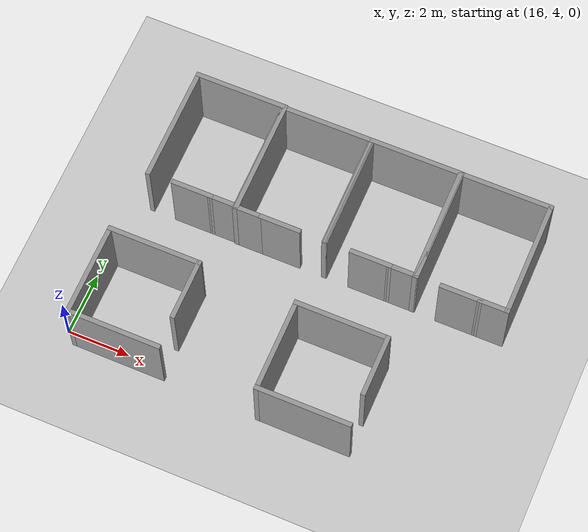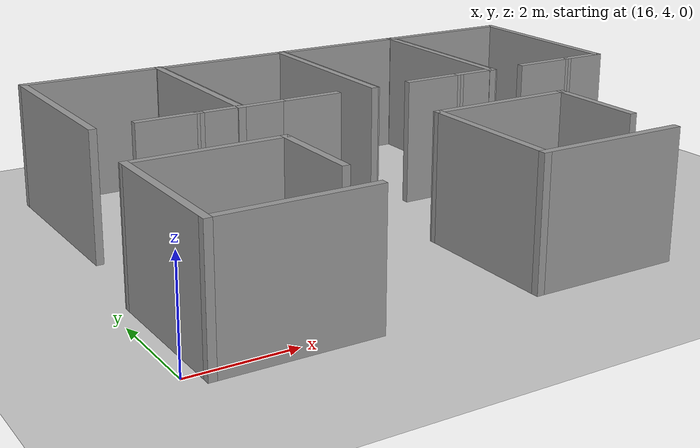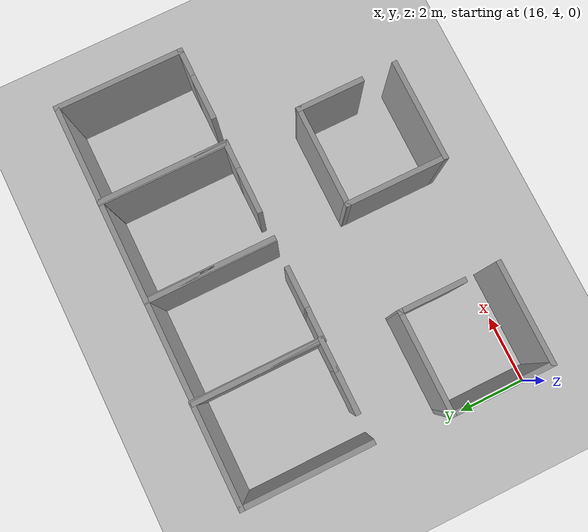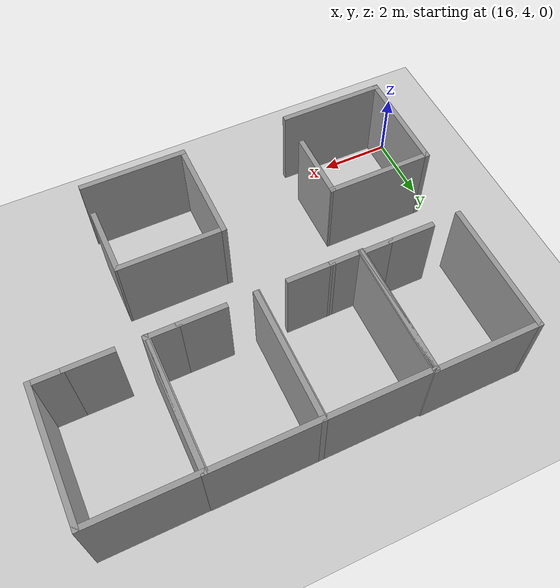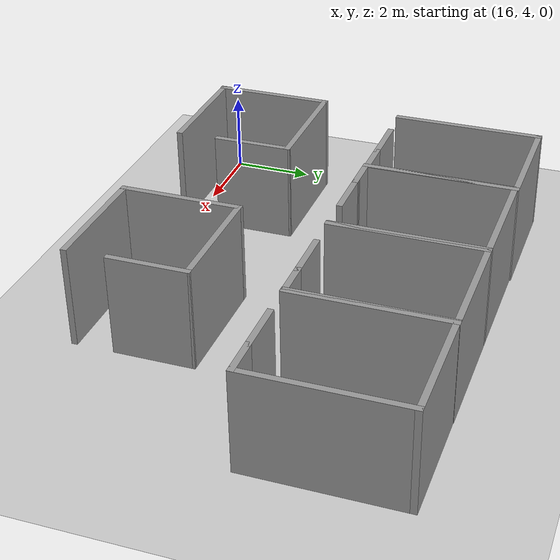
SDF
<sdf version="1.6">
 <world name="default">
  <model name="ground_plane">
   <static>1</static>
   <link name="link">
    <collision name="collision">
     <geometry><plane><normal>0 0 1</normal><size>100 100</size></plane></geometry>
     <surface><friction><ode><mu>100</mu><mu2>50</mu2></ode></friction></surface>
    </collision>
    <visual name="visual">
     <cast_shadows>0</cast_shadows>
     <geometry><plane><normal>0 0 1</normal><size>100 100</size></plane></geometry>
     <material>
      <script><uri>file://media/materials/scripts/gazebo.material</uri><name>Gazebo/Grey</name></script>
     </material>
    </visual>
   </link>
  </model>
  <model name="313-325">
   <link name="Wall_16">
    <pose>-1.44915 7.1e-05 0 0 0 -1.57088</pose>
    <visual name="Wall_16_Visual">
     <pose>0 0 1.25 0 -0 0</pose>
     <geometry><box><size>3.81 0.15 2.5</size></box></geometry>
     <material>
      <script><uri>file://media/materials/scripts/gazebo.material</uri><name>Gazebo/Grey</name></script>
      <ambient>1 1 1 1</ambient>
      <shader type="pixel"/>
     </material>
     <meta><layer>0</layer></meta>
    </visual>
    <collision name="Wall_16_Collision">
     <pose>0 0 1.25 0 -0 0</pose>
     <geometry><box><size>3.81 0.15 2.5</size></box></geometry>
     <surface>
      <friction>
       <ode><mu>1</mu><mu2>1</mu2><fdir1>0 0 0</fdir1><slip1>0</slip1><slip2>0</slip2></ode>
       <torsional>
        <coefficient>1</coefficient>
        <patch_radius>0</patch_radius>
        <surface_radius>0</surface_radius>
        <use_patch_radius>1</use_patch_radius>
        <ode><slip>0</slip></ode>
       </torsional>
      </friction>
      <bounce><restitution_coefficient>0</restitution_coefficient><threshold>1e+06</threshold></bounce>
      <contact>
       <collide_without_contact>0</collide_without_contact>
       <collide_without_contact_bitmask>1</collide_without_contact_bitmask>
       <collide_bitmask>1</collide_bitmask>
       <ode>
        <soft_cfm>0</soft_cfm>
        <soft_erp>0.2</soft_erp>
        <kp>1e+13</kp>
        <kd>1</kd>
        <max_vel>0.01</max_vel>
        <min_depth>0</min_depth>
       </ode>
       <bullet>
        <split_impulse>1</split_impulse>
        <split_impulse_penetration_threshold>-0.01</split_impulse_penetration_threshold>
        <soft_cfm>0</soft_cfm>
        <soft_erp>0.2</soft_erp>
        <kp>1e+13</kp>
        <kd>1</kd>
       </bullet>
      </contact>
     </surface>
    </collision>
   </link>
   <link name="Wall_18">
    <pose>1.449 -6.1e-05 0 0 -0 1.5708</pose>
    <visual name="Wall_18_Visual">
     <pose>0 0 1.25 0 -0 0</pose>
     <geometry><box><size>3.80974 0.15 2.5</size></box></geometry>
     <material>
      <script><uri>file://media/materials/scripts/gazebo.material</uri><name>Gazebo/Grey</name></script>
      <ambient>1 1 1 1</ambient>
      <shader type="pixel"/>
     </material>
     <meta><layer>0</layer></meta>
    </visual>
    <collision name="Wall_18_Collision">
     <pose>0 0 1.25 0 -0 0</pose>
     <geometry><box><size>3.80974 0.15 2.5</size></box></geometry>
     <surface>
      <friction>
       <ode><mu>1</mu><mu2>1</mu2><fdir1>0 0 0</fdir1><slip1>0</slip1><slip2>0</slip2></ode>
       <torsional>
        <coefficient>1</coefficient>
        <patch_radius>0</patch_radius>
        <surface_radius>0</surface_radius>
        <use_patch_radius>1</use_patch_radius>
        <ode><slip>0</slip></ode>
       </torsional>
      </friction>
      <bounce><restitution_coefficient>0</restitution_coefficient><threshold>1e+06</threshold></bounce>
      <contact>
       <collide_without_contact>0</collide_without_contact>
       <collide_without_contact_bitmask>1</collide_without_contact_bitmask>
       <collide_bitmask>1</collide_bitmask>
       <ode>
        <soft_cfm>0</soft_cfm>
        <soft_erp>0.2</soft_erp>
        <kp>1e+13</kp>
        <kd>1</kd>
        <max_vel>0.01</max_vel>
        <min_depth>0</min_depth>
       </ode>
       <bullet>
        <split_impulse>1</split_impulse>
        <split_impulse_penetration_threshold>-0.01</split_impulse_penetration_threshold>
        <soft_cfm>0</soft_cfm>
        <soft_erp>0.2</soft_erp>
        <kp>1e+13</kp>
        <kd>1</kd>
       </bullet>
      </contact>
     </surface>
    </collision>
   </link>
   <link name="Wall_19">
    <pose>2e-06 1.82994 0 0 -0 3.14159</pose>
    <visual name="Wall_19_Visual">
     <pose>0 0 1.25 0 -0 0</pose>
     <geometry><box><size>3.04862 0.15 2.5</size></box></geometry>
     <material>
      <script><uri>file://media/materials/scripts/gazebo.material</uri><name>Gazebo/Grey</name></script>
      <ambient>1 1 1 1</ambient>
      <shader type="pixel"/>
     </material>
     <meta><layer>0</layer></meta>
    </visual>
    <collision name="Wall_19_Collision">
     <pose>0 0 1.25 0 -0 0</pose>
     <geometry><box><size>3.04862 0.15 2.5</size></box></geometry>
     <surface>
      <friction>
       <ode><mu>1</mu><mu2>1</mu2><fdir1>0 0 0</fdir1><slip1>0</slip1><slip2>0</slip2></ode>
       <torsional>
        <coefficient>1</coefficient>
        <patch_radius>0</patch_radius>
        <surface_radius>0</surface_radius>
        <use_patch_radius>1</use_patch_radius>
        <ode><slip>0</slip></ode>
       </torsional>
      </friction>
      <bounce><restitution_coefficient>0</restitution_coefficient><threshold>1e+06</threshold></bounce>
      <contact>
       <collide_without_contact>0</collide_without_contact>
       <collide_without_contact_bitmask>1</collide_without_contact_bitmask>
       <collide_bitmask>1</collide_bitmask>
       <ode>
        <soft_cfm>0</soft_cfm>
        <soft_erp>0.2</soft_erp>
        <kp>1e+13</kp>
        <kd>1</kd>
        <max_vel>0.01</max_vel>
        <min_depth>0</min_depth>
       </ode>
       <bullet>
        <split_impulse>1</split_impulse>
        <split_impulse_penetration_threshold>-0.01</split_impulse_penetration_threshold>
        <soft_cfm>0</soft_cfm>
        <soft_erp>0.2</soft_erp>
        <kp>1e+13</kp>
        <kd>1</kd>
       </bullet>
      </contact>
     </surface>
    </collision>
   </link>
   <link name="Wall_22">
    <pose>-0.000153 -1.82993 0 0 0 -0.00022</pose>
    <visual name="Wall_22_Visual">
     <pose>0 0 1.25 0 -0 0</pose>
     <geometry><box><size>1.34831 0.15 2.5</size></box></geometry>
     <material>
      <script><uri>file://media/materials/scripts/gazebo.material</uri><name>Gazebo/Grey</name></script>
      <ambient>1 1 1 1</ambient>
      <shader type="pixel"/>
     </material>
     <meta><layer>0</layer></meta>
    </visual>
    <collision name="Wall_22_Collision">
     <pose>0 0 1.25 0 -0 0</pose>
     <geometry><box><size>1.34831 0.15 2.5</size></box></geometry>
     <surface>
      <friction>
       <ode><mu>1</mu><mu2>1</mu2><fdir1>0 0 0</fdir1><slip1>0</slip1><slip2>0</slip2></ode>
       <torsional>
        <coefficient>1</coefficient>
        <patch_radius>0</patch_radius>
        <surface_radius>0</surface_radius>
        <use_patch_radius>1</use_patch_radius>
        <ode><slip>0</slip></ode>
       </torsional>
      </friction>
      <bounce><restitution_coefficient>0</restitution_coefficient><threshold>1e+06</threshold></bounce>
      <contact>
       <collide_without_contact>0</collide_without_contact>
       <collide_without_contact_bitmask>1</collide_without_contact_bitmask>
       <collide_bitmask>1</collide_bitmask>
       <ode>
        <soft_cfm>0</soft_cfm>
        <soft_erp>0.2</soft_erp>
        <kp>1e+13</kp>
        <kd>1</kd>
        <max_vel>0.01</max_vel>
        <min_depth>0</min_depth>
       </ode>
       <bullet>
        <split_impulse>1</split_impulse>
        <split_impulse_penetration_threshold>-0.01</split_impulse_penetration_threshold>
        <soft_cfm>0</soft_cfm>
        <soft_erp>0.2</soft_erp>
        <kp>1e+13</kp>
        <kd>1</kd>
       </bullet>
      </contact>
     </surface>
    </collision>
   </link>
   <link name="Wall_23">
    <pose>1.024 -1.83006 0 0 -0 0</pose>
    <visual name="Wall_23_Visual">
     <pose>0 0 1.25 0 -0 0</pose>
     <geometry><box><size>1 0.15 2.5</size></box></geometry>
     <material>
      <script><uri>file://media/materials/scripts/gazebo.material</uri><name>Gazebo/Grey</name></script>
      <ambient>1 1 1 1</ambient>
      <shader type="pixel"/>
     </material>
     <meta><layer>0</layer></meta>
    </visual>
    <collision name="Wall_23_Collision">
     <pose>0 0 1.25 0 -0 0</pose>
     <geometry><box><size>1 0.15 2.5</size></box></geometry>
     <surface>
      <friction>
       <ode><mu>1</mu><mu2>1</mu2><fdir1>0 0 0</fdir1><slip1>0</slip1><slip2>0</slip2></ode>
       <torsional>
        <coefficient>1</coefficient>
        <patch_radius>0</patch_radius>
        <surface_radius>0</surface_radius>
        <use_patch_radius>1</use_patch_radius>
        <ode><slip>0</slip></ode>
       </torsional>
      </friction>
      <bounce><restitution_coefficient>0</restitution_coefficient><threshold>1e+06</threshold></bounce>
      <contact>
       <collide_without_contact>0</collide_without_contact>
       <collide_without_contact_bitmask>1</collide_without_contact_bitmask>
       <collide_bitmask>1</collide_bitmask>
       <ode>
        <soft_cfm>0</soft_cfm>
        <soft_erp>0.2</soft_erp>
        <kp>1e+13</kp>
        <kd>1</kd>
        <max_vel>0.01</max_vel>
        <min_depth>0</min_depth>
       </ode>
       <bullet>
        <split_impulse>1</split_impulse>
        <split_impulse_penetration_threshold>-0.01</split_impulse_penetration_threshold>
        <soft_cfm>0</soft_cfm>
        <soft_erp>0.2</soft_erp>
        <kp>1e+13</kp>
        <kd>1</kd>
       </bullet>
      </contact>
     </surface>
    </collision>
   </link>
   <static>1</static>
   <pose>26.7345 10.5803 0 0 -0 0</pose>
  </model>
  <model name="313-325_0">
   <link name="Wall_16">
    <pose>-1.44915 7.1e-05 0 0 0 -1.57088</pose>
    <visual name="Wall_16_Visual">
     <pose>0 0 1.25 0 -0 0</pose>
     <geometry><box><size>3.81 0.15 2.5</size></box></geometry>
     <material>
      <script><uri>file://media/materials/scripts/gazebo.material</uri><name>Gazebo/Grey</name></script>
      <ambient>1 1 1 1</ambient>
      <shader type="pixel"/>
     </material>
     <meta><layer>0</layer></meta>
    </visual>
    <collision name="Wall_16_Collision">
     <pose>0 0 1.25 0 -0 0</pose>
     <geometry><box><size>3.81 0.15 2.5</size></box></geometry>
     <surface>
      <friction>
       <ode><mu>1</mu><mu2>1</mu2><fdir1>0 0 0</fdir1><slip1>0</slip1><slip2>0</slip2></ode>
       <torsional>
        <coefficient>1</coefficient>
        <patch_radius>0</patch_radius>
        <surface_radius>0</surface_radius>
        <use_patch_radius>1</use_patch_radius>
        <ode><slip>0</slip></ode>
       </torsional>
      </friction>
      <bounce><restitution_coefficient>0</restitution_coefficient><threshold>1e+06</threshold></bounce>
      <contact>
       <collide_without_contact>0</collide_without_contact>
       <collide_without_contact_bitmask>1</collide_without_contact_bitmask>
       <collide_bitmask>1</collide_bitmask>
       <ode>
        <soft_cfm>0</soft_cfm>
        <soft_erp>0.2</soft_erp>
        <kp>1e+13</kp>
        <kd>1</kd>
        <max_vel>0.01</max_vel>
        <min_depth>0</min_depth>
       </ode>
       <bullet>
        <split_impulse>1</split_impulse>
        <split_impulse_penetration_threshold>-0.01</split_impulse_penetration_threshold>
        <soft_cfm>0</soft_cfm>
        <soft_erp>0.2</soft_erp>
        <kp>1e+13</kp>
        <kd>1</kd>
       </bullet>
      </contact>
     </surface>
    </collision>
   </link>
   <link name="Wall_18">
    <pose>1.449 -6.1e-05 0 0 -0 1.5708</pose>
    <visual name="Wall_18_Visual">
     <pose>0 0 1.25 0 -0 0</pose>
     <geometry><box><size>3.80974 0.15 2.5</size></box></geometry>
     <material>
      <script><uri>file://media/materials/scripts/gazebo.material</uri><name>Gazebo/Grey</name></script>
      <ambient>1 1 1 1</ambient>
      <shader type="pixel"/>
     </material>
     <meta><layer>0</layer></meta>
    </visual>
    <collision name="Wall_18_Collision">
     <pose>0 0 1.25 0 -0 0</pose>
     <geometry><box><size>3.80974 0.15 2.5</size></box></geometry>
     <surface>
      <friction>
       <ode><mu>1</mu><mu2>1</mu2><fdir1>0 0 0</fdir1><slip1>0</slip1><slip2>0</slip2></ode>
       <torsional>
        <coefficient>1</coefficient>
        <patch_radius>0</patch_radius>
        <surface_radius>0</surface_radius>
        <use_patch_radius>1</use_patch_radius>
        <ode><slip>0</slip></ode>
       </torsional>
      </friction>
      <bounce><restitution_coefficient>0</restitution_coefficient><threshold>1e+06</threshold></bounce>
      <contact>
       <collide_without_contact>0</collide_without_contact>
       <collide_without_contact_bitmask>1</collide_without_contact_bitmask>
       <collide_bitmask>1</collide_bitmask>
       <ode>
        <soft_cfm>0</soft_cfm>
        <soft_erp>0.2</soft_erp>
        <kp>1e+13</kp>
        <kd>1</kd>
        <max_vel>0.01</max_vel>
        <min_depth>0</min_depth>
       </ode>
       <bullet>
        <split_impulse>1</split_impulse>
        <split_impulse_penetration_threshold>-0.01</split_impulse_penetration_threshold>
        <soft_cfm>0</soft_cfm>
        <soft_erp>0.2</soft_erp>
        <kp>1e+13</kp>
        <kd>1</kd>
       </bullet>
      </contact>
     </surface>
    </collision>
   </link>
   <link name="Wall_19">
    <pose>2e-06 1.82994 0 0 -0 3.14159</pose>
    <visual name="Wall_19_Visual">
     <pose>0 0 1.25 0 -0 0</pose>
     <geometry><box><size>3.04862 0.15 2.5</size></box></geometry>
     <material>
      <script><uri>file://media/materials/scripts/gazebo.material</uri><name>Gazebo/Grey</name></script>
      <ambient>1 1 1 1</ambient>
      <shader type="pixel"/>
     </material>
     <meta><layer>0</layer></meta>
    </visual>
    <collision name="Wall_19_Collision">
     <pose>0 0 1.25 0 -0 0</pose>
     <geometry><box><size>3.04862 0.15 2.5</size></box></geometry>
     <surface>
      <friction>
       <ode><mu>1</mu><mu2>1</mu2><fdir1>0 0 0</fdir1><slip1>0</slip1><slip2>0</slip2></ode>
       <torsional>
        <coefficient>1</coefficient>
        <patch_radius>0</patch_radius>
        <surface_radius>0</surface_radius>
        <use_patch_radius>1</use_patch_radius>
        <ode><slip>0</slip></ode>
       </torsional>
      </friction>
      <bounce><restitution_coefficient>0</restitution_coefficient><threshold>1e+06</threshold></bounce>
      <contact>
       <collide_without_contact>0</collide_without_contact>
       <collide_without_contact_bitmask>1</collide_without_contact_bitmask>
       <collide_bitmask>1</collide_bitmask>
       <ode>
        <soft_cfm>0</soft_cfm>
        <soft_erp>0.2</soft_erp>
        <kp>1e+13</kp>
        <kd>1</kd>
        <max_vel>0.01</max_vel>
        <min_depth>0</min_depth>
       </ode>
       <bullet>
        <split_impulse>1</split_impulse>
        <split_impulse_penetration_threshold>-0.01</split_impulse_penetration_threshold>
        <soft_cfm>0</soft_cfm>
        <soft_erp>0.2</soft_erp>
        <kp>1e+13</kp>
        <kd>1</kd>
       </bullet>
      </contact>
     </surface>
    </collision>
   </link>
   <link name="Wall_22">
    <pose>-0.000153 -1.82993 0 0 0 -0.00022</pose>
    <visual name="Wall_22_Visual">
     <pose>0 0 1.25 0 -0 0</pose>
     <geometry><box><size>1.34831 0.15 2.5</size></box></geometry>
     <material>
      <script><uri>file://media/materials/scripts/gazebo.material</uri><name>Gazebo/Grey</name></script>
      <ambient>1 1 1 1</ambient>
      <shader type="pixel"/>
     </material>
     <meta><layer>0</layer></meta>
    </visual>
    <collision name="Wall_22_Collision">
     <pose>0 0 1.25 0 -0 0</pose>
     <geometry><box><size>1.34831 0.15 2.5</size></box></geometry>
     <surface>
      <friction>
       <ode><mu>1</mu><mu2>1</mu2><fdir1>0 0 0</fdir1><slip1>0</slip1><slip2>0</slip2></ode>
       <torsional>
        <coefficient>1</coefficient>
        <patch_radius>0</patch_radius>
        <surface_radius>0</surface_radius>
        <use_patch_radius>1</use_patch_radius>
        <ode><slip>0</slip></ode>
       </torsional>
      </friction>
      <bounce><restitution_coefficient>0</restitution_coefficient><threshold>1e+06</threshold></bounce>
      <contact>
       <collide_without_contact>0</collide_without_contact>
       <collide_without_contact_bitmask>1</collide_without_contact_bitmask>
       <collide_bitmask>1</collide_bitmask>
       <ode>
        <soft_cfm>0</soft_cfm>
        <soft_erp>0.2</soft_erp>
        <kp>1e+13</kp>
        <kd>1</kd>
        <max_vel>0.01</max_vel>
        <min_depth>0</min_depth>
       </ode>
       <bullet>
        <split_impulse>1</split_impulse>
        <split_impulse_penetration_threshold>-0.01</split_impulse_penetration_threshold>
        <soft_cfm>0</soft_cfm>
        <soft_erp>0.2</soft_erp>
        <kp>1e+13</kp>
        <kd>1</kd>
       </bullet>
      </contact>
     </surface>
    </collision>
   </link>
   <link name="Wall_23">
    <pose>1.024 -1.83006 0 0 -0 0</pose>
    <visual name="Wall_23_Visual">
     <pose>0 0 1.25 0 -0 0</pose>
     <geometry><box><size>1 0.15 2.5</size></box></geometry>
     <material>
      <script><uri>file://media/materials/scripts/gazebo.material</uri><name>Gazebo/Grey</name></script>
      <ambient>1 1 1 1</ambient>
      <shader type="pixel"/>
     </material>
     <meta><layer>0</layer></meta>
    </visual>
    <collision name="Wall_23_Collision">
     <pose>0 0 1.25 0 -0 0</pose>
     <geometry><box><size>1 0.15 2.5</size></box></geometry>
     <surface>
      <friction>
       <ode><mu>1</mu><mu2>1</mu2><fdir1>0 0 0</fdir1><slip1>0</slip1><slip2>0</slip2></ode>
       <torsional>
        <coefficient>1</coefficient>
        <patch_radius>0</patch_radius>
        <surface_radius>0</surface_radius>
        <use_patch_radius>1</use_patch_radius>
        <ode><slip>0</slip></ode>
       </torsional>
      </friction>
      <bounce><restitution_coefficient>0</restitution_coefficient><threshold>1e+06</threshold></bounce>
      <contact>
       <collide_without_contact>0</collide_without_contact>
       <collide_without_contact_bitmask>1</collide_without_contact_bitmask>
       <collide_bitmask>1</collide_bitmask>
       <ode>
        <soft_cfm>0</soft_cfm>
        <soft_erp>0.2</soft_erp>
        <kp>1e+13</kp>
        <kd>1</kd>
        <max_vel>0.01</max_vel>
        <min_depth>0</min_depth>
       </ode>
       <bullet>
        <split_impulse>1</split_impulse>
        <split_impulse_penetration_threshold>-0.01</split_impulse_penetration_threshold>
        <soft_cfm>0</soft_cfm>
        <soft_erp>0.2</soft_erp>
        <kp>1e+13</kp>
        <kd>1</kd>
       </bullet>
      </contact>
     </surface>
    </collision>
   </link>
   <static>1</static>
   <pose>23.8717 10.5881 0 0 -0 0</pose>
  </model>
  <model name="313-325_1">
   <link name="Wall_16">
    <pose>-1.44915 7.1e-05 0 0 0 -1.57088</pose>
    <visual name="Wall_16_Visual">
     <pose>0 0 1.25 0 -0 0</pose>
     <geometry><box><size>3.81 0.15 2.5</size></box></geometry>
     <material>
      <script><uri>file://media/materials/scripts/gazebo.material</uri><name>Gazebo/Grey</name></script>
      <ambient>1 1 1 1</ambient>
      <shader type="pixel"/>
     </material>
     <meta><layer>0</layer></meta>
    </visual>
    <collision name="Wall_16_Collision">
     <pose>0 0 1.25 0 -0 0</pose>
     <geometry><box><size>3.81 0.15 2.5</size></box></geometry>
     <surface>
      <friction>
       <ode><mu>1</mu><mu2>1</mu2><fdir1>0 0 0</fdir1><slip1>0</slip1><slip2>0</slip2></ode>
       <torsional>
        <coefficient>1</coefficient>
        <patch_radius>0</patch_radius>
        <surface_radius>0</surface_radius>
        <use_patch_radius>1</use_patch_radius>
        <ode><slip>0</slip></ode>
       </torsional>
      </friction>
      <bounce><restitution_coefficient>0</restitution_coefficient><threshold>1e+06</threshold></bounce>
      <contact>
       <collide_without_contact>0</collide_without_contact>
       <collide_without_contact_bitmask>1</collide_without_contact_bitmask>
       <collide_bitmask>1</collide_bitmask>
       <ode>
        <soft_cfm>0</soft_cfm>
        <soft_erp>0.2</soft_erp>
        <kp>1e+13</kp>
        <kd>1</kd>
        <max_vel>0.01</max_vel>
        <min_depth>0</min_depth>
       </ode>
       <bullet>
        <split_impulse>1</split_impulse>
        <split_impulse_penetration_threshold>-0.01</split_impulse_penetration_threshold>
        <soft_cfm>0</soft_cfm>
        <soft_erp>0.2</soft_erp>
        <kp>1e+13</kp>
        <kd>1</kd>
       </bullet>
      </contact>
     </surface>
    </collision>
   </link>
   <link name="Wall_18">
    <pose>1.449 -6.1e-05 0 0 -0 1.5708</pose>
    <visual name="Wall_18_Visual">
     <pose>0 0 1.25 0 -0 0</pose>
     <geometry><box><size>3.80974 0.15 2.5</size></box></geometry>
     <material>
      <script><uri>file://media/materials/scripts/gazebo.material</uri><name>Gazebo/Grey</name></script>
      <ambient>1 1 1 1</ambient>
      <shader type="pixel"/>
     </material>
     <meta><layer>0</layer></meta>
    </visual>
    <collision name="Wall_18_Collision">
     <pose>0 0 1.25 0 -0 0</pose>
     <geometry><box><size>3.80974 0.15 2.5</size></box></geometry>
     <surface>
      <friction>
       <ode><mu>1</mu><mu2>1</mu2><fdir1>0 0 0</fdir1><slip1>0</slip1><slip2>0</slip2></ode>
       <torsional>
        <coefficient>1</coefficient>
        <patch_radius>0</patch_radius>
        <surface_radius>0</surface_radius>
        <use_patch_radius>1</use_patch_radius>
        <ode><slip>0</slip></ode>
       </torsional>
      </friction>
      <bounce><restitution_coefficient>0</restitution_coefficient><threshold>1e+06</threshold></bounce>
      <contact>
       <collide_without_contact>0</collide_without_contact>
       <collide_without_contact_bitmask>1</collide_without_contact_bitmask>
       <collide_bitmask>1</collide_bitmask>
       <ode>
        <soft_cfm>0</soft_cfm>
        <soft_erp>0.2</soft_erp>
        <kp>1e+13</kp>
        <kd>1</kd>
        <max_vel>0.01</max_vel>
        <min_depth>0</min_depth>
       </ode>
       <bullet>
        <split_impulse>1</split_impulse>
        <split_impulse_penetration_threshold>-0.01</split_impulse_penetration_threshold>
        <soft_cfm>0</soft_cfm>
        <soft_erp>0.2</soft_erp>
        <kp>1e+13</kp>
        <kd>1</kd>
       </bullet>
      </contact>
     </surface>
    </collision>
   </link>
   <link name="Wall_19">
    <pose>2e-06 1.82994 0 0 -0 3.14159</pose>
    <visual name="Wall_19_Visual">
     <pose>0 0 1.25 0 -0 0</pose>
     <geometry><box><size>3.04862 0.15 2.5</size></box></geometry>
     <material>
      <script><uri>file://media/materials/scripts/gazebo.material</uri><name>Gazebo/Grey</name></script>
      <ambient>1 1 1 1</ambient>
      <shader type="pixel"/>
     </material>
     <meta><layer>0</layer></meta>
    </visual>
    <collision name="Wall_19_Collision">
     <pose>0 0 1.25 0 -0 0</pose>
     <geometry><box><size>3.04862 0.15 2.5</size></box></geometry>
     <surface>
      <friction>
       <ode><mu>1</mu><mu2>1</mu2><fdir1>0 0 0</fdir1><slip1>0</slip1><slip2>0</slip2></ode>
       <torsional>
        <coefficient>1</coefficient>
        <patch_radius>0</patch_radius>
        <surface_radius>0</surface_radius>
        <use_patch_radius>1</use_patch_radius>
        <ode><slip>0</slip></ode>
       </torsional>
      </friction>
      <bounce><restitution_coefficient>0</restitution_coefficient><threshold>1e+06</threshold></bounce>
      <contact>
       <collide_without_contact>0</collide_without_contact>
       <collide_without_contact_bitmask>1</collide_without_contact_bitmask>
       <collide_bitmask>1</collide_bitmask>
       <ode>
        <soft_cfm>0</soft_cfm>
        <soft_erp>0.2</soft_erp>
        <kp>1e+13</kp>
        <kd>1</kd>
        <max_vel>0.01</max_vel>
        <min_depth>0</min_depth>
       </ode>
       <bullet>
        <split_impulse>1</split_impulse>
        <split_impulse_penetration_threshold>-0.01</split_impulse_penetration_threshold>
        <soft_cfm>0</soft_cfm>
        <soft_erp>0.2</soft_erp>
        <kp>1e+13</kp>
        <kd>1</kd>
       </bullet>
      </contact>
     </surface>
    </collision>
   </link>
   <link name="Wall_21">
    <pose>-1.02431 -1.8298 0 0 -0 0</pose>
    <visual name="Wall_21_Visual">
     <pose>0 0 1.25 0 -0 0</pose>
     <geometry><box><size>1 0.15 2.5</size></box></geometry>
     <material>
      <script><uri>file://media/materials/scripts/gazebo.material</uri><name>Gazebo/Grey</name></script>
      <ambient>1 1 1 1</ambient>
      <shader type="pixel"/>
     </material>
     <meta><layer>0</layer></meta>
    </visual>
    <collision name="Wall_21_Collision">
     <pose>0 0 1.25 0 -0 0</pose>
     <geometry><box><size>1 0.15 2.5</size></box></geometry>
     <surface>
      <friction>
       <ode><mu>1</mu><mu2>1</mu2><fdir1>0 0 0</fdir1><slip1>0</slip1><slip2>0</slip2></ode>
       <torsional>
        <coefficient>1</coefficient>
        <patch_radius>0</patch_radius>
        <surface_radius>0</surface_radius>
        <use_patch_radius>1</use_patch_radius>
        <ode><slip>0</slip></ode>
       </torsional>
      </friction>
      <bounce><restitution_coefficient>0</restitution_coefficient><threshold>1e+06</threshold></bounce>
      <contact>
       <collide_without_contact>0</collide_without_contact>
       <collide_without_contact_bitmask>1</collide_without_contact_bitmask>
       <collide_bitmask>1</collide_bitmask>
       <ode>
        <soft_cfm>0</soft_cfm>
        <soft_erp>0.2</soft_erp>
        <kp>1e+13</kp>
        <kd>1</kd>
        <max_vel>0.01</max_vel>
        <min_depth>0</min_depth>
       </ode>
       <bullet>
        <split_impulse>1</split_impulse>
        <split_impulse_penetration_threshold>-0.01</split_impulse_penetration_threshold>
        <soft_cfm>0</soft_cfm>
        <soft_erp>0.2</soft_erp>
        <kp>1e+13</kp>
        <kd>1</kd>
       </bullet>
      </contact>
     </surface>
    </collision>
   </link>
   <link name="Wall_22">
    <pose>-0.000153 -1.82993 0 0 0 -0.00022</pose>
    <visual name="Wall_22_Visual">
     <pose>0 0 1.25 0 -0 0</pose>
     <geometry><box><size>1.34831 0.15 2.5</size></box></geometry>
     <material>
      <script><uri>file://media/materials/scripts/gazebo.material</uri><name>Gazebo/Grey</name></script>
      <ambient>1 1 1 1</ambient>
      <shader type="pixel"/>
     </material>
     <meta><layer>0</layer></meta>
    </visual>
    <collision name="Wall_22_Collision">
     <pose>0 0 1.25 0 -0 0</pose>
     <geometry><box><size>1.34831 0.15 2.5</size></box></geometry>
     <surface>
      <friction>
       <ode><mu>1</mu><mu2>1</mu2><fdir1>0 0 0</fdir1><slip1>0</slip1><slip2>0</slip2></ode>
       <torsional>
        <coefficient>1</coefficient>
        <patch_radius>0</patch_radius>
        <surface_radius>0</surface_radius>
        <use_patch_radius>1</use_patch_radius>
        <ode><slip>0</slip></ode>
       </torsional>
      </friction>
      <bounce><restitution_coefficient>0</restitution_coefficient><threshold>1e+06</threshold></bounce>
      <contact>
       <collide_without_contact>0</collide_without_contact>
       <collide_without_contact_bitmask>1</collide_without_contact_bitmask>
       <collide_bitmask>1</collide_bitmask>
       <ode>
        <soft_cfm>0</soft_cfm>
        <soft_erp>0.2</soft_erp>
        <kp>1e+13</kp>
        <kd>1</kd>
        <max_vel>0.01</max_vel>
        <min_depth>0</min_depth>
       </ode>
       <bullet>
        <split_impulse>1</split_impulse>
        <split_impulse_penetration_threshold>-0.01</split_impulse_penetration_threshold>
        <soft_cfm>0</soft_cfm>
        <soft_erp>0.2</soft_erp>
        <kp>1e+13</kp>
        <kd>1</kd>
       </bullet>
      </contact>
     </surface>
    </collision>
   </link>
   <static>1</static>
   <pose>20.9434 10.5859 0 0 -0 0</pose>
  </model>
  <model name="313-325_2">
   <link name="Wall_16">
    <pose>-1.44915 7.1e-05 0 0 0 -1.57088</pose>
    <visual name="Wall_16_Visual">
     <pose>0 0 1.25 0 -0 0</pose>
     <geometry><box><size>3.81 0.15 2.5</size></box></geometry>
     <material>
      <script><uri>file://media/materials/scripts/gazebo.material</uri><name>Gazebo/Grey</name></script>
      <ambient>1 1 1 1</ambient>
      <shader type="pixel"/>
     </material>
     <meta><layer>0</layer></meta>
    </visual>
    <collision name="Wall_16_Collision">
     <pose>0 0 1.25 0 -0 0</pose>
     <geometry><box><size>3.81 0.15 2.5</size></box></geometry>
     <surface>
      <friction>
       <ode><mu>1</mu><mu2>1</mu2><fdir1>0 0 0</fdir1><slip1>0</slip1><slip2>0</slip2></ode>
       <torsional>
        <coefficient>1</coefficient>
        <patch_radius>0</patch_radius>
        <surface_radius>0</surface_radius>
        <use_patch_radius>1</use_patch_radius>
        <ode><slip>0</slip></ode>
       </torsional>
      </friction>
      <bounce><restitution_coefficient>0</restitution_coefficient><threshold>1e+06</threshold></bounce>
      <contact>
       <collide_without_contact>0</collide_without_contact>
       <collide_without_contact_bitmask>1</collide_without_contact_bitmask>
       <collide_bitmask>1</collide_bitmask>
       <ode>
        <soft_cfm>0</soft_cfm>
        <soft_erp>0.2</soft_erp>
        <kp>1e+13</kp>
        <kd>1</kd>
        <max_vel>0.01</max_vel>
        <min_depth>0</min_depth>
       </ode>
       <bullet>
        <split_impulse>1</split_impulse>
        <split_impulse_penetration_threshold>-0.01</split_impulse_penetration_threshold>
        <soft_cfm>0</soft_cfm>
        <soft_erp>0.2</soft_erp>
        <kp>1e+13</kp>
        <kd>1</kd>
       </bullet>
      </contact>
     </surface>
    </collision>
   </link>
   <link name="Wall_18">
    <pose>1.449 -6.1e-05 0 0 -0 1.5708</pose>
    <visual name="Wall_18_Visual">
     <pose>0 0 1.25 0 -0 0</pose>
     <geometry><box><size>3.80974 0.15 2.5</size></box></geometry>
     <material>
      <script><uri>file://media/materials/scripts/gazebo.material</uri><name>Gazebo/Grey</name></script>
      <ambient>1 1 1 1</ambient>
      <shader type="pixel"/>
     </material>
     <meta><layer>0</layer></meta>
    </visual>
    <collision name="Wall_18_Collision">
     <pose>0 0 1.25 0 -0 0</pose>
     <geometry><box><size>3.80974 0.15 2.5</size></box></geometry>
     <surface>
      <friction>
       <ode><mu>1</mu><mu2>1</mu2><fdir1>0 0 0</fdir1><slip1>0</slip1><slip2>0</slip2></ode>
       <torsional>
        <coefficient>1</coefficient>
        <patch_radius>0</patch_radius>
        <surface_radius>0</surface_radius>
        <use_patch_radius>1</use_patch_radius>
        <ode><slip>0</slip></ode>
       </torsional>
      </friction>
      <bounce><restitution_coefficient>0</restitution_coefficient><threshold>1e+06</threshold></bounce>
      <contact>
       <collide_without_contact>0</collide_without_contact>
       <collide_without_contact_bitmask>1</collide_without_contact_bitmask>
       <collide_bitmask>1</collide_bitmask>
       <ode>
        <soft_cfm>0</soft_cfm>
        <soft_erp>0.2</soft_erp>
        <kp>1e+13</kp>
        <kd>1</kd>
        <max_vel>0.01</max_vel>
        <min_depth>0</min_depth>
       </ode>
       <bullet>
        <split_impulse>1</split_impulse>
        <split_impulse_penetration_threshold>-0.01</split_impulse_penetration_threshold>
        <soft_cfm>0</soft_cfm>
        <soft_erp>0.2</soft_erp>
        <kp>1e+13</kp>
        <kd>1</kd>
       </bullet>
      </contact>
     </surface>
    </collision>
   </link>
   <link name="Wall_19">
    <pose>2e-06 1.82994 0 0 -0 3.14159</pose>
    <visual name="Wall_19_Visual">
     <pose>0 0 1.25 0 -0 0</pose>
     <geometry><box><size>3.04862 0.15 2.5</size></box></geometry>
     <material>
      <script><uri>file://media/materials/scripts/gazebo.material</uri><name>Gazebo/Grey</name></script>
      <ambient>1 1 1 1</ambient>
      <shader type="pixel"/>
     </material>
     <meta><layer>0</layer></meta>
    </visual>
    <collision name="Wall_19_Collision">
     <pose>0 0 1.25 0 -0 0</pose>
     <geometry><box><size>3.04862 0.15 2.5</size></box></geometry>
     <surface>
      <friction>
       <ode><mu>1</mu><mu2>1</mu2><fdir1>0 0 0</fdir1><slip1>0</slip1><slip2>0</slip2></ode>
       <torsional>
        <coefficient>1</coefficient>
        <patch_radius>0</patch_radius>
        <surface_radius>0</surface_radius>
        <use_patch_radius>1</use_patch_radius>
        <ode><slip>0</slip></ode>
       </torsional>
      </friction>
      <bounce><restitution_coefficient>0</restitution_coefficient><threshold>1e+06</threshold></bounce>
      <contact>
       <collide_without_contact>0</collide_without_contact>
       <collide_without_contact_bitmask>1</collide_without_contact_bitmask>
       <collide_bitmask>1</collide_bitmask>
       <ode>
        <soft_cfm>0</soft_cfm>
        <soft_erp>0.2</soft_erp>
        <kp>1e+13</kp>
        <kd>1</kd>
        <max_vel>0.01</max_vel>
        <min_depth>0</min_depth>
       </ode>
       <bullet>
        <split_impulse>1</split_impulse>
        <split_impulse_penetration_threshold>-0.01</split_impulse_penetration_threshold>
        <soft_cfm>0</soft_cfm>
        <soft_erp>0.2</soft_erp>
        <kp>1e+13</kp>
        <kd>1</kd>
       </bullet>
      </contact>
     </surface>
    </collision>
   </link>
   <link name="Wall_22">
    <pose>-0.000153 -1.82993 0 0 0 -0.00022</pose>
    <visual name="Wall_22_Visual">
     <pose>0 0 1.25 0 -0 0</pose>
     <geometry><box><size>1.34831 0.15 2.5</size></box></geometry>
     <material>
      <script><uri>file://media/materials/scripts/gazebo.material</uri><name>Gazebo/Grey</name></script>
      <ambient>1 1 1 1</ambient>
      <shader type="pixel"/>
     </material>
     <meta><layer>0</layer></meta>
    </visual>
    <collision name="Wall_22_Collision">
     <pose>0 0 1.25 0 -0 0</pose>
     <geometry><box><size>1.34831 0.15 2.5</size></box></geometry>
     <surface>
      <friction>
       <ode><mu>1</mu><mu2>1</mu2><fdir1>0 0 0</fdir1><slip1>0</slip1><slip2>0</slip2></ode>
       <torsional>
        <coefficient>1</coefficient>
        <patch_radius>0</patch_radius>
        <surface_radius>0</surface_radius>
        <use_patch_radius>1</use_patch_radius>
        <ode><slip>0</slip></ode>
       </torsional>
      </friction>
      <bounce><restitution_coefficient>0</restitution_coefficient><threshold>1e+06</threshold></bounce>
      <contact>
       <collide_without_contact>0</collide_without_contact>
       <collide_without_contact_bitmask>1</collide_without_contact_bitmask>
       <collide_bitmask>1</collide_bitmask>
       <ode>
        <soft_cfm>0</soft_cfm>
        <soft_erp>0.2</soft_erp>
        <kp>1e+13</kp>
        <kd>1</kd>
        <max_vel>0.01</max_vel>
        <min_depth>0</min_depth>
       </ode>
       <bullet>
        <split_impulse>1</split_impulse>
        <split_impulse_penetration_threshold>-0.01</split_impulse_penetration_threshold>
        <soft_cfm>0</soft_cfm>
        <soft_erp>0.2</soft_erp>
        <kp>1e+13</kp>
        <kd>1</kd>
       </bullet>
      </contact>
     </surface>
    </collision>
   </link>
   <link name="Wall_23">
    <pose>1.024 -1.83006 0 0 -0 0</pose>
    <visual name="Wall_23_Visual">
     <pose>0 0 1.25 0 -0 0</pose>
     <geometry><box><size>1 0.15 2.5</size></box></geometry>
     <material>
      <script><uri>file://media/materials/scripts/gazebo.material</uri><name>Gazebo/Grey</name></script>
      <ambient>1 1 1 1</ambient>
      <shader type="pixel"/>
     </material>
     <meta><layer>0</layer></meta>
    </visual>
    <collision name="Wall_23_Collision">
     <pose>0 0 1.25 0 -0 0</pose>
     <geometry><box><size>1 0.15 2.5</size></box></geometry>
     <surface>
      <friction>
       <ode><mu>1</mu><mu2>1</mu2><fdir1>0 0 0</fdir1><slip1>0</slip1><slip2>0</slip2></ode>
       <torsional>
        <coefficient>1</coefficient>
        <patch_radius>0</patch_radius>
        <surface_radius>0</surface_radius>
        <use_patch_radius>1</use_patch_radius>
        <ode><slip>0</slip></ode>
       </torsional>
      </friction>
      <bounce><restitution_coefficient>0</restitution_coefficient><threshold>1e+06</threshold></bounce>
      <contact>
       <collide_without_contact>0</collide_without_contact>
       <collide_without_contact_bitmask>1</collide_without_contact_bitmask>
       <collide_bitmask>1</collide_bitmask>
       <ode>
        <soft_cfm>0</soft_cfm>
        <soft_erp>0.2</soft_erp>
        <kp>1e+13</kp>
        <kd>1</kd>
        <max_vel>0.01</max_vel>
        <min_depth>0</min_depth>
       </ode>
       <bullet>
        <split_impulse>1</split_impulse>
        <split_impulse_penetration_threshold>-0.01</split_impulse_penetration_threshold>
        <soft_cfm>0</soft_cfm>
        <soft_erp>0.2</soft_erp>
        <kp>1e+13</kp>
        <kd>1</kd>
       </bullet>
      </contact>
     </surface>
    </collision>
   </link>
   <static>1</static>
   <pose>18.072 10.6177 0 0 -0 0</pose>
  </model>
  <model name="F3MidRooms_6">
   <pose>17.806 5.19453 0 0 -0 0</pose>
   <link name="Wall_68">
    <collision name="Wall_68_Collision">
     <geometry><box><size>3.048 0.15 2.5</size></box></geometry>
     <pose>0 0 1.25 0 -0 0</pose>
    </collision>
    <visual name="Wall_68_Visual">
     <pose>0 0 1.25 0 -0 0</pose>
     <geometry><box><size>3.048 0.15 2.5</size></box></geometry>
     <material>
      <script><uri>file://media/materials/scripts/gazebo.material</uri><name>Gazebo/Grey</name></script>
      <ambient>1 1 1 1</ambient>
     </material>
     <meta><layer>0</layer></meta>
    </visual>
    <pose>0 -1.44909 0 0 -0 -0.000152</pose>
   </link>
   <link name="Wall_70">
    <collision name="Wall_70_Collision">
     <geometry><box><size>3.04786 0.15 2.5</size></box></geometry>
     <pose>0 0 1.25 0 -0 0</pose>
    </collision>
    <visual name="Wall_70_Visual">
     <pose>0 0 1.25 0 -0 0</pose>
     <geometry><box><size>3.04786 0.15 2.5</size></box></geometry>
     <material>
      <script><uri>file://media/materials/scripts/gazebo.material</uri><name>Gazebo/Grey</name></script>
      <ambient>1 1 1 1</ambient>
     </material>
     <meta><layer>0</layer></meta>
    </visual>
    <pose>0 1.44891 0 0 -0 3.14144</pose>
   </link>
   <link name="Wall_71">
    <collision name="Wall_71_Collision">
     <geometry><box><size>3.0484 0.15 2.5</size></box></geometry>
     <pose>0 0 1.25 0 -0 0</pose>
    </collision>
    <visual name="Wall_71_Visual">
     <pose>0 0 1.25 0 -0 0</pose>
     <geometry><box><size>3.0484 0.15 2.5</size></box></geometry>
     <material>
      <script><uri>file://media/materials/scripts/gazebo.material</uri><name>Gazebo/Grey</name></script>
      <ambient>1 1 1 1</ambient>
     </material>
     <meta><layer>0</layer></meta>
    </visual>
    <pose>-1.44893 0.000126 0 0 -0 -1.5708</pose>
   </link>
   <link name="Wall_73">
    <collision name="Wall_73_Collision">
     <geometry><box><size>2 0.15 2.5</size></box></geometry>
     <pose>0 0 1.25 0 -0 0</pose>
    </collision>
    <visual name="Wall_73_Visual">
     <pose>0 0 1.25 0 -0 0</pose>
     <geometry><box><size>2 0.15 2.5</size></box></geometry>
     <material>
      <script><uri>file://media/materials/scripts/gazebo.material</uri><name>Gazebo/Grey</name></script>
      <ambient>1 1 1 1</ambient>
     </material>
     <meta><layer>0</layer></meta>
    </visual>
    <pose>1.44893 0.523687 0 0 -0 -1.5708</pose>
   </link>
   <static>1</static>
  </model>
  <model name="F3MidRooms_9">
   <pose>23.848 5.13921 0 0 -0 0</pose>
   <link name="Wall_68">
    <collision name="Wall_68_Collision">
     <geometry><box><size>3.048 0.15 2.5</size></box></geometry>
     <pose>0 0 1.25 0 -0 0</pose>
    </collision>
    <visual name="Wall_68_Visual">
     <pose>0 0 1.25 0 -0 0</pose>
     <geometry><box><size>3.048 0.15 2.5</size></box></geometry>
     <material>
      <script><uri>file://media/materials/scripts/gazebo.material</uri><name>Gazebo/Grey</name></script>
      <ambient>1 1 1 1</ambient>
     </material>
     <meta><layer>0</layer></meta>
    </visual>
    <pose>0 -1.44909 0 0 -0 -0.000152</pose>
   </link>
   <link name="Wall_70">
    <collision name="Wall_70_Collision">
     <geometry><box><size>3.04786 0.15 2.5</size></box></geometry>
     <pose>0 0 1.25 0 -0 0</pose>
    </collision>
    <visual name="Wall_70_Visual">
     <pose>0 0 1.25 0 -0 0</pose>
     <geometry><box><size>3.04786 0.15 2.5</size></box></geometry>
     <material>
      <script><uri>file://media/materials/scripts/gazebo.material</uri><name>Gazebo/Grey</name></script>
      <ambient>1 1 1 1</ambient>
     </material>
     <meta><layer>0</layer></meta>
    </visual>
    <pose>0 1.44891 0 0 -0 3.14144</pose>
   </link>
   <link name="Wall_71">
    <collision name="Wall_71_Collision">
     <geometry><box><size>3.0484 0.15 2.5</size></box></geometry>
     <pose>0 0 1.25 0 -0 0</pose>
    </collision>
    <visual name="Wall_71_Visual">
     <pose>0 0 1.25 0 -0 0</pose>
     <geometry><box><size>3.0484 0.15 2.5</size></box></geometry>
     <material>
      <script><uri>file://media/materials/scripts/gazebo.material</uri><name>Gazebo/Grey</name></script>
      <ambient>1 1 1 1</ambient>
     </material>
     <meta><layer>0</layer></meta>
    </visual>
    <pose>-1.44893 0.000126 0 0 -0 -1.5708</pose>
   </link>
   <link name="Wall_73">
    <collision name="Wall_73_Collision">
     <geometry><box><size>2 0.15 2.5</size></box></geometry>
     <pose>0 0 1.25 0 -0 0</pose>
    </collision>
    <visual name="Wall_73_Visual">
     <pose>0 0 1.25 0 -0 0</pose>
     <geometry><box><size>2 0.15 2.5</size></box></geometry>
     <material>
      <script><uri>file://media/materials/scripts/gazebo.material</uri><name>Gazebo/Grey</name></script>
      <ambient>1 1 1 1</ambient>
     </material>
     <meta><layer>0</layer></meta>
    </visual>
    <pose>1.44893 0.523687 0 0 -0 -1.5708</pose>
   </link>
   <static>1</static>
  </model>
 </world>
</sdf>
